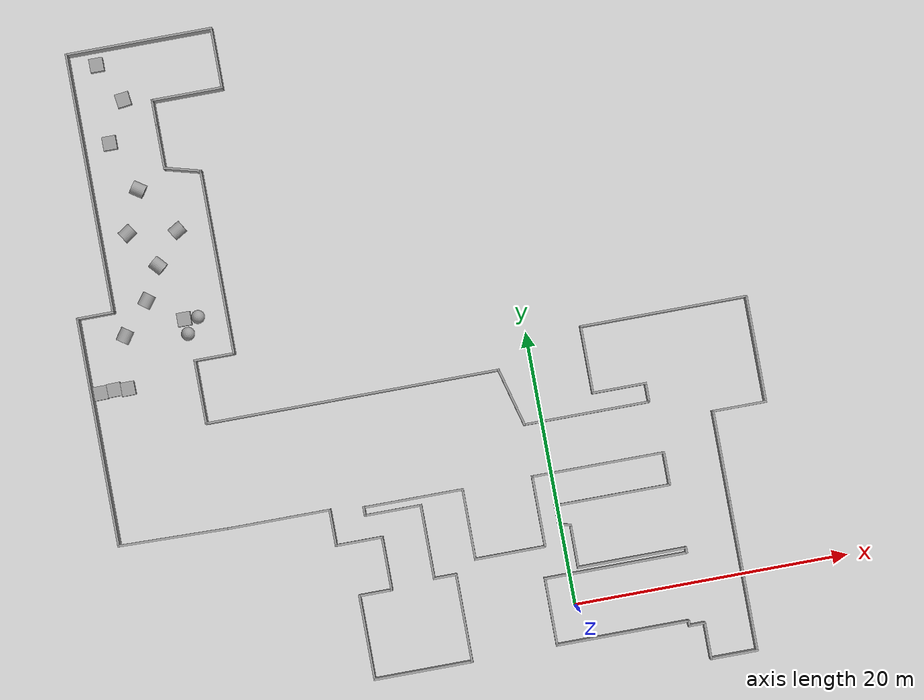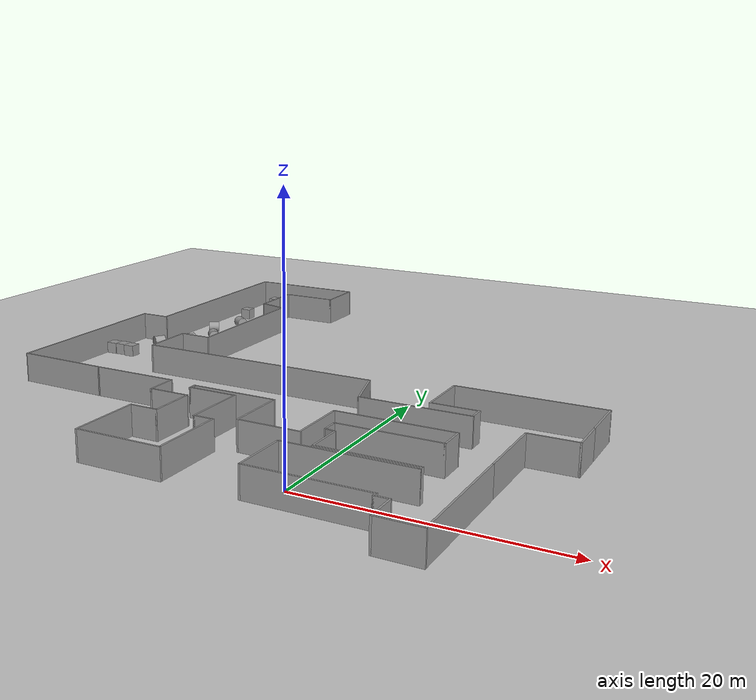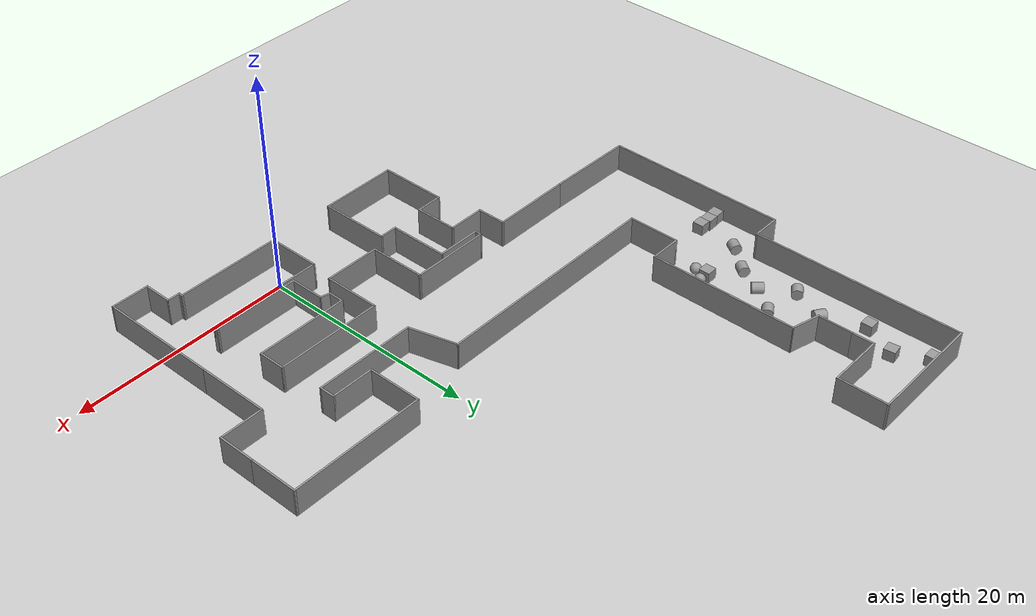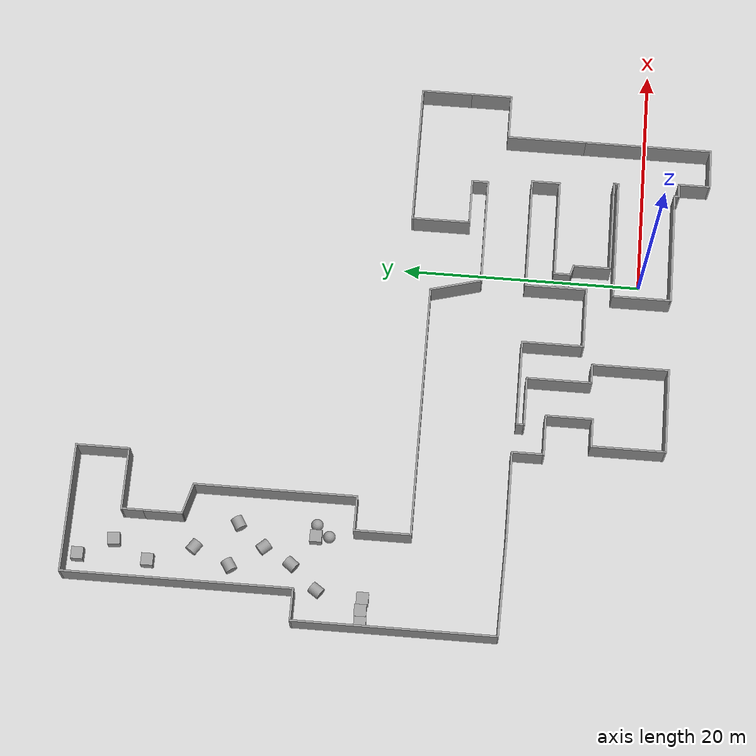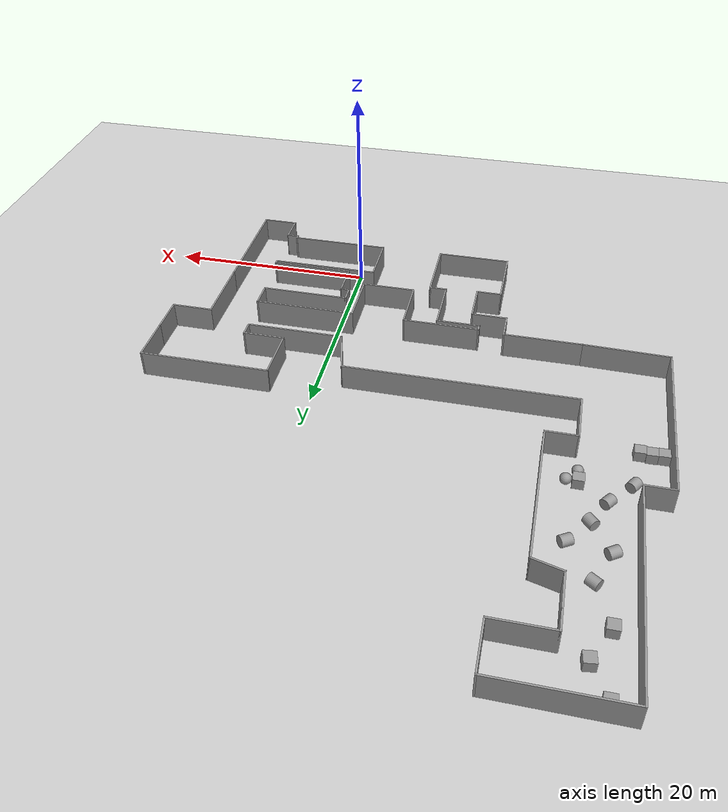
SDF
<sdf version="1.7">
 <world name="default">
  <model name="ground_plane">
   <static>1</static>
   <link name="link">
    <collision name="collision">
     <geometry><plane><normal>0 0 1</normal><size>100 100</size></plane></geometry>
     <surface><friction><ode><mu>100</mu><mu2>50</mu2></ode></friction></surface>
    </collision>
    <visual name="visual">
     <cast_shadows>0</cast_shadows>
     <geometry><plane><normal>0 0 1</normal><size>100 100</size></plane></geometry>
     <material>
      <script><uri>file://media/materials/scripts/gazebo.material</uri><name>Gazebo/Grey</name></script>
     </material>
    </visual>
   </link>
  </model>
  <model name="complex_env3">
   <pose>-7.7367 20.0281 0 0 -0 0</pose>
   <link name="Wall_1">
    <collision name="Wall_1_Collision">
     <geometry><box><size>11 0.15 2.5</size></box></geometry>
     <pose>0 0 1.25 0 -0 0</pose>
    </collision>
    <visual name="Wall_1_Visual">
     <pose>0 0 1.25 0 -0 0</pose>
     <geometry><box><size>11 0.15 2.5</size></box></geometry>
     <material>
      <script><uri>file://media/materials/scripts/gazebo.material</uri><name>Gazebo/Grey</name></script>
      <ambient>1 1 1 1</ambient>
     </material>
     <meta><layer>0</layer></meta>
    </visual>
    <pose>19.9445 -20.1124 0 0 -0 -1.5708</pose>
   </link>
   <link name="Wall_10">
    <collision name="Wall_10_Collision">
     <geometry><box><size>8 0.15 2.5</size></box></geometry>
     <pose>0 0 1.25 0 -0 0</pose>
    </collision>
    <visual name="Wall_10_Visual">
     <pose>0 0 1.25 0 -0 0</pose>
     <geometry><box><size>8 0.15 2.5</size></box></geometry>
     <material>
      <script><uri>file://media/materials/scripts/gazebo.material</uri><name>Gazebo/Grey</name></script>
      <ambient>1 1 1 1</ambient>
     </material>
     <meta><layer>0</layer></meta>
    </visual>
    <pose>12.3195 -17.3874 0 0 -0 3.14159</pose>
   </link>
   <link name="Wall_11">
    <collision name="Wall_11_Collision">
     <geometry><box><size>3.25 0.15 2.5</size></box></geometry>
     <pose>0 0 1.25 0 -0 0</pose>
    </collision>
    <visual name="Wall_11_Visual">
     <pose>0 0 1.25 0 -0 0</pose>
     <geometry><box><size>3.25 0.15 2.5</size></box></geometry>
     <material>
      <script><uri>file://media/materials/scripts/gazebo.material</uri><name>Gazebo/Grey</name></script>
      <ambient>1 1 1 1</ambient>
     </material>
     <meta><layer>0</layer></meta>
    </visual>
    <pose>8.39449 -15.8374 0 0 -0 1.5708</pose>
   </link>
   <link name="Wall_12">
    <collision name="Wall_12_Collision">
     <geometry><box><size>1 0.15 2.5</size></box></geometry>
     <pose>0 0 1.25 0 -0 0</pose>
    </collision>
    <visual name="Wall_12_Visual">
     <pose>0 0 1.25 0 -0 0</pose>
     <geometry><box><size>1 0.15 2.5</size></box></geometry>
     <material>
      <script><uri>file://media/materials/scripts/gazebo.material</uri><name>Gazebo/Grey</name></script>
      <ambient>1 1 1 1</ambient>
     </material>
     <meta><layer>0</layer></meta>
    </visual>
    <pose>7.98397 -14.1774 0 0 -0 2.87979</pose>
   </link>
   <link name="Wall_13">
    <collision name="Wall_13_Collision">
     <geometry><box><size>1.5 0.15 2.5</size></box></geometry>
     <pose>0 0 1.25 0 -0 0</pose>
    </collision>
    <visual name="Wall_13_Visual">
     <pose>0 0 1.25 0 -0 0</pose>
     <geometry><box><size>1.5 0.15 2.5</size></box></geometry>
     <material>
      <script><uri>file://media/materials/scripts/gazebo.material</uri><name>Gazebo/Grey</name></script>
      <ambient>1 1 1 1</ambient>
     </material>
     <meta><layer>0</layer></meta>
    </visual>
    <pose>7.57345 -13.3924 0 0 -0 1.5708</pose>
   </link>
   <link name="Wall_14">
    <collision name="Wall_14_Collision">
     <geometry><box><size>8.5 0.15 2.5</size></box></geometry>
     <pose>0 0 1.25 0 -0 0</pose>
    </collision>
    <visual name="Wall_14_Visual">
     <pose>0 0 1.25 0 -0 0</pose>
     <geometry><box><size>8.5 0.15 2.5</size></box></geometry>
     <material>
      <script><uri>file://media/materials/scripts/gazebo.material</uri><name>Gazebo/Grey</name></script>
      <ambient>1 1 1 1</ambient>
     </material>
     <meta><layer>0</layer></meta>
    </visual>
    <pose>11.7485 -12.7174 0 0 -0 0</pose>
   </link>
   <link name="Wall_15">
    <collision name="Wall_15_Collision">
     <geometry><box><size>2.5 0.15 2.5</size></box></geometry>
     <pose>0 0 1.25 0 -0 0</pose>
    </collision>
    <visual name="Wall_15_Visual">
     <pose>0 0 1.25 0 -0 0</pose>
     <geometry><box><size>2.5 0.15 2.5</size></box></geometry>
     <material>
      <script><uri>file://media/materials/scripts/gazebo.material</uri><name>Gazebo/Grey</name></script>
      <ambient>1 1 1 1</ambient>
     </material>
     <meta><layer>0</layer></meta>
    </visual>
    <pose>15.9235 -11.5424 0 0 -0 1.5708</pose>
   </link>
   <link name="Wall_16">
    <collision name="Wall_16_Collision">
     <geometry><box><size>9.75 0.15 2.5</size></box></geometry>
     <pose>0 0 1.25 0 -0 0</pose>
    </collision>
    <visual name="Wall_16_Visual">
     <pose>0 0 1.25 0 -0 0</pose>
     <geometry><box><size>9.75 0.15 2.5</size></box></geometry>
     <material>
      <script><uri>file://media/materials/scripts/gazebo.material</uri><name>Gazebo/Grey</name></script>
      <ambient>1 1 1 1</ambient>
     </material>
     <meta><layer>0</layer></meta>
    </visual>
    <pose>11.1235 -10.3674 0 0 -0 3.14159</pose>
   </link>
   <link name="Wall_17">
    <collision name="Wall_17_Collision">
     <geometry><box><size>5.25 0.15 2.5</size></box></geometry>
     <pose>0 0 1.25 0 -0 0</pose>
    </collision>
    <visual name="Wall_17_Visual">
     <pose>0 0 1.25 0 -0 0</pose>
     <geometry><box><size>5.25 0.15 2.5</size></box></geometry>
     <material>
      <script><uri>file://media/materials/scripts/gazebo.material</uri><name>Gazebo/Grey</name></script>
      <ambient>1 1 1 1</ambient>
     </material>
     <meta><layer>0</layer></meta>
    </visual>
    <pose>6.32345 -12.9174 0 0 -0 -1.5708</pose>
   </link>
   <link name="Wall_18">
    <collision name="Wall_18_Collision">
     <geometry><box><size>5.25 0.15 2.5</size></box></geometry>
     <pose>0 0 1.25 0 -0 0</pose>
    </collision>
    <visual name="Wall_18_Visual">
     <pose>0 0 1.25 0 -0 0</pose>
     <geometry><box><size>5.25 0.15 2.5</size></box></geometry>
     <material>
      <script><uri>file://media/materials/scripts/gazebo.material</uri><name>Gazebo/Grey</name></script>
      <ambient>1 1 1 1</ambient>
     </material>
     <meta><layer>0</layer></meta>
    </visual>
    <pose>3.77345 -15.4674 0 0 -0 3.14159</pose>
   </link>
   <link name="Wall_19">
    <collision name="Wall_19_Collision">
     <geometry><box><size>5.25 0.15 2.5</size></box></geometry>
     <pose>0 0 1.25 0 -0 0</pose>
    </collision>
    <visual name="Wall_19_Visual">
     <pose>0 0 1.25 0 -0 0</pose>
     <geometry><box><size>5.25 0.15 2.5</size></box></geometry>
     <material>
      <script><uri>file://media/materials/scripts/gazebo.material</uri><name>Gazebo/Grey</name></script>
      <ambient>1 1 1 1</ambient>
     </material>
     <meta><layer>0</layer></meta>
    </visual>
    <pose>1.22345 -12.9174 0 0 -0 1.5708</pose>
   </link>
   <link name="Wall_2">
    <collision name="Wall_2_Collision">
     <geometry><box><size>3.5 0.15 2.5</size></box></geometry>
     <pose>0 0 1.25 0 -0 0</pose>
    </collision>
    <visual name="Wall_2_Visual">
     <pose>0 0 1.25 0 -0 0</pose>
     <geometry><box><size>3.5 0.15 2.5</size></box></geometry>
     <material>
      <script><uri>file://media/materials/scripts/gazebo.material</uri><name>Gazebo/Grey</name></script>
      <ambient>1 1 1 1</ambient>
     </material>
     <meta><layer>0</layer></meta>
    </visual>
    <pose>18.2695 -25.5374 0 0 -0 3.14159</pose>
   </link>
   <link name="Wall_20">
    <collision name="Wall_20_Collision">
     <geometry><box><size>7.25 0.15 2.5</size></box></geometry>
     <pose>0 0 1.25 0 -0 0</pose>
    </collision>
    <visual name="Wall_20_Visual">
     <pose>0 0 1.25 0 -0 0</pose>
     <geometry><box><size>7.25 0.15 2.5</size></box></geometry>
     <material>
      <script><uri>file://media/materials/scripts/gazebo.material</uri><name>Gazebo/Grey</name></script>
      <ambient>1 1 1 1</ambient>
     </material>
     <meta><layer>0</layer></meta>
    </visual>
    <pose>-2.32655 -10.3674 0 0 -0 3.14159</pose>
   </link>
   <link name="Wall_22">
    <collision name="Wall_22_Collision">
     <geometry><box><size>4.21482 0.15 2.5</size></box></geometry>
     <pose>0 0 1.25 0 -0 0</pose>
    </collision>
    <visual name="Wall_22_Visual">
     <pose>0 0 1.25 0 -0 0</pose>
     <geometry><box><size>4.21482 0.15 2.5</size></box></geometry>
     <material>
      <script><uri>file://media/materials/scripts/gazebo.material</uri><name>Gazebo/Grey</name></script>
      <ambient>1 1 1 1</ambient>
     </material>
     <meta><layer>0</layer></meta>
    </visual>
    <pose>-3.96425 -10.9469 0 0 -0 0</pose>
   </link>
   <link name="Wall_23">
    <collision name="Wall_23_Collision">
     <geometry><box><size>5.5 0.15 2.5</size></box></geometry>
     <pose>0 0 1.25 0 -0 0</pose>
    </collision>
    <visual name="Wall_23_Visual">
     <pose>0 0 1.25 0 -0 0</pose>
     <geometry><box><size>5.5 0.15 2.5</size></box></geometry>
     <material>
      <script><uri>file://media/materials/scripts/gazebo.material</uri><name>Gazebo/Grey</name></script>
      <ambient>1 1 1 1</ambient>
     </material>
     <meta><layer>0</layer></meta>
    </visual>
    <pose>-1.93184 -13.6219 0 0 -0 -1.5708</pose>
   </link>
   <link name="Wall_24">
    <collision name="Wall_24_Collision">
     <geometry><box><size>1.75 0.15 2.5</size></box></geometry>
     <pose>0 0 1.25 0 -0 0</pose>
    </collision>
    <visual name="Wall_24_Visual">
     <pose>0 0 1.25 0 -0 0</pose>
     <geometry><box><size>1.75 0.15 2.5</size></box></geometry>
     <material>
      <script><uri>file://media/materials/scripts/gazebo.material</uri><name>Gazebo/Grey</name></script>
      <ambient>1 1 1 1</ambient>
     </material>
     <meta><layer>0</layer></meta>
    </visual>
    <pose>-1.13184 -16.2969 0 0 -0 0</pose>
   </link>
   <link name="Wall_25">
    <collision name="Wall_25_Collision">
     <geometry><box><size>6.5 0.15 2.5</size></box></geometry>
     <pose>0 0 1.25 0 -0 0</pose>
    </collision>
    <visual name="Wall_25_Visual">
     <pose>0 0 1.25 0 -0 0</pose>
     <geometry><box><size>6.5 0.15 2.5</size></box></geometry>
     <material>
      <script><uri>file://media/materials/scripts/gazebo.material</uri><name>Gazebo/Grey</name></script>
      <ambient>1 1 1 1</ambient>
     </material>
     <meta><layer>0</layer></meta>
    </visual>
    <pose>-0.331841 -19.4719 0 0 -0 -1.5708</pose>
   </link>
   <link name="Wall_26">
    <collision name="Wall_26_Collision">
     <geometry><box><size>7.25 0.15 2.5</size></box></geometry>
     <pose>0 0 1.25 0 -0 0</pose>
    </collision>
    <visual name="Wall_26_Visual">
     <pose>0 0 1.25 0 -0 0</pose>
     <geometry><box><size>7.25 0.15 2.5</size></box></geometry>
     <material>
      <script><uri>file://media/materials/scripts/gazebo.material</uri><name>Gazebo/Grey</name></script>
      <ambient>1 1 1 1</ambient>
     </material>
     <meta><layer>0</layer></meta>
    </visual>
    <pose>-3.88184 -22.6469 0 0 -0 3.14159</pose>
   </link>
   <link name="Wall_27">
    <collision name="Wall_27_Collision">
     <geometry><box><size>6.25 0.15 2.5</size></box></geometry>
     <pose>0 0 1.25 0 -0 0</pose>
    </collision>
    <visual name="Wall_27_Visual">
     <pose>0 0 1.25 0 -0 0</pose>
     <geometry><box><size>6.25 0.15 2.5</size></box></geometry>
     <material>
      <script><uri>file://media/materials/scripts/gazebo.material</uri><name>Gazebo/Grey</name></script>
      <ambient>1 1 1 1</ambient>
     </material>
     <meta><layer>0</layer></meta>
    </visual>
    <pose>-7.43184 -19.5969 0 0 -0 1.5708</pose>
   </link>
   <link name="Wall_28">
    <collision name="Wall_28_Collision">
     <geometry><box><size>2.5 0.15 2.5</size></box></geometry>
     <pose>0 0 1.25 0 -0 0</pose>
    </collision>
    <visual name="Wall_28_Visual">
     <pose>0 0 1.25 0 -0 0</pose>
     <geometry><box><size>2.5 0.15 2.5</size></box></geometry>
     <material>
      <script><uri>file://media/materials/scripts/gazebo.material</uri><name>Gazebo/Grey</name></script>
      <ambient>1 1 1 1</ambient>
     </material>
     <meta><layer>0</layer></meta>
    </visual>
    <pose>-6.25684 -16.5469 0 0 -0 0</pose>
   </link>
   <link name="Wall_29">
    <collision name="Wall_29_Collision">
     <geometry><box><size>4 0.15 2.5</size></box></geometry>
     <pose>0 0 1.25 0 -0 0</pose>
    </collision>
    <visual name="Wall_29_Visual">
     <pose>0 0 1.25 0 -0 0</pose>
     <geometry><box><size>4 0.15 2.5</size></box></geometry>
     <material>
      <script><uri>file://media/materials/scripts/gazebo.material</uri><name>Gazebo/Grey</name></script>
      <ambient>1 1 1 1</ambient>
     </material>
     <meta><layer>0</layer></meta>
    </visual>
    <pose>-5.08184 -14.6219 0 0 -0 1.5708</pose>
   </link>
   <link name="Wall_3">
    <collision name="Wall_3_Collision">
     <geometry><box><size>2.75 0.15 2.5</size></box></geometry>
     <pose>0 0 1.25 0 -0 0</pose>
    </collision>
    <visual name="Wall_3_Visual">
     <pose>0 0 1.25 0 -0 0</pose>
     <geometry><box><size>2.75 0.15 2.5</size></box></geometry>
     <material>
      <script><uri>file://media/materials/scripts/gazebo.material</uri><name>Gazebo/Grey</name></script>
      <ambient>1 1 1 1</ambient>
     </material>
     <meta><layer>0</layer></meta>
    </visual>
    <pose>16.5945 -24.2374 0 0 -0 1.5708</pose>
   </link>
   <link name="Wall_30">
    <collision name="Wall_30_Collision">
     <geometry><box><size>3.5 0.15 2.5</size></box></geometry>
     <pose>0 0 1.25 0 -0 0</pose>
    </collision>
    <visual name="Wall_30_Visual">
     <pose>0 0 1.25 0 -0 0</pose>
     <geometry><box><size>3.5 0.15 2.5</size></box></geometry>
     <material>
      <script><uri>file://media/materials/scripts/gazebo.material</uri><name>Gazebo/Grey</name></script>
      <ambient>1 1 1 1</ambient>
     </material>
     <meta><layer>0</layer></meta>
    </visual>
    <pose>-6.75684 -12.6969 0 0 -0 3.14159</pose>
   </link>
   <link name="Wall_31">
    <collision name="Wall_31_Collision">
     <geometry><box><size>2.75 0.15 2.5</size></box></geometry>
     <pose>0 0 1.25 0 -0 0</pose>
    </collision>
    <visual name="Wall_31_Visual">
     <pose>0 0 1.25 0 -0 0</pose>
     <geometry><box><size>2.75 0.15 2.5</size></box></geometry>
     <material>
      <script><uri>file://media/materials/scripts/gazebo.material</uri><name>Gazebo/Grey</name></script>
      <ambient>1 1 1 1</ambient>
     </material>
     <meta><layer>0</layer></meta>
    </visual>
    <pose>-8.43184 -11.3969 0 0 -0 1.5708</pose>
   </link>
   <link name="Wall_32">
    <collision name="Wall_32_Collision">
     <geometry><box><size>7.5 0.15 2.5</size></box></geometry>
     <pose>0 0 1.25 0 -0 0</pose>
    </collision>
    <visual name="Wall_32_Visual">
     <pose>0 0 1.25 0 -0 0</pose>
     <geometry><box><size>7.5 0.15 2.5</size></box></geometry>
     <material>
      <script><uri>file://media/materials/scripts/gazebo.material</uri><name>Gazebo/Grey</name></script>
      <ambient>1 1 1 1</ambient>
     </material>
     <meta><layer>0</layer></meta>
    </visual>
    <pose>-12.1068 -10.0969 0 0 -0 3.14159</pose>
   </link>
   <link name="Wall_4">
    <collision name="Wall_4_Collision">
     <geometry><box><size>1.25 0.15 2.5</size></box></geometry>
     <pose>0 0 1.25 0 -0 0</pose>
    </collision>
    <visual name="Wall_4_Visual">
     <pose>0 0 1.25 0 -0 0</pose>
     <geometry><box><size>1.25 0.15 2.5</size></box></geometry>
     <material>
      <script><uri>file://media/materials/scripts/gazebo.material</uri><name>Gazebo/Grey</name></script>
      <ambient>1 1 1 1</ambient>
     </material>
     <meta><layer>0</layer></meta>
    </visual>
    <pose>16.0445 -22.9374 0 0 -0 3.14159</pose>
   </link>
   <link name="Wall_41">
    <collision name="Wall_41_Collision">
     <geometry><box><size>0.75 0.15 2.5</size></box></geometry>
     <pose>0 0 1.25 0 -0 0</pose>
    </collision>
    <visual name="Wall_41_Visual">
     <pose>0 0 1.25 0 -0 0</pose>
     <geometry><box><size>0.75 0.15 2.5</size></box></geometry>
     <material>
      <script><uri>file://media/materials/scripts/gazebo.material</uri><name>Gazebo/Grey</name></script>
      <ambient>1 1 1 1</ambient>
     </material>
     <meta><layer>0</layer></meta>
    </visual>
    <pose>-5.99666 -10.6469 0 0 -0 1.5708</pose>
   </link>
   <link name="Wall_43">
    <collision name="Wall_43_Collision">
     <geometry><box><size>6.75 0.15 2.5</size></box></geometry>
     <pose>0 0 1.25 0 -0 0</pose>
    </collision>
    <visual name="Wall_43_Visual">
     <pose>0 0 1.25 0 -0 0</pose>
     <geometry><box><size>6.75 0.15 2.5</size></box></geometry>
     <material>
      <script><uri>file://media/materials/scripts/gazebo.material</uri><name>Gazebo/Grey</name></script>
      <ambient>1 1 1 1</ambient>
     </material>
     <meta><layer>0</layer></meta>
    </visual>
    <pose>19.9445 -11.3874 0 0 -0 1.5708</pose>
   </link>
   <link name="Wall_44">
    <collision name="Wall_44_Collision">
     <geometry><box><size>4 0.15 2.5</size></box></geometry>
     <pose>0 0 1.25 0 -0 0</pose>
    </collision>
    <visual name="Wall_44_Visual">
     <pose>0 0 1.25 0 -0 0</pose>
     <geometry><box><size>4 0.15 2.5</size></box></geometry>
     <material>
      <script><uri>file://media/materials/scripts/gazebo.material</uri><name>Gazebo/Grey</name></script>
      <ambient>1 1 1 1</ambient>
     </material>
     <meta><layer>0</layer></meta>
    </visual>
    <pose>21.8695 -8.08735 0 0 -0 0</pose>
   </link>
   <link name="Wall_45">
    <collision name="Wall_45_Collision">
     <geometry><box><size>3.5 0.15 2.5</size></box></geometry>
     <pose>0 0 1.25 0 -0 0</pose>
    </collision>
    <visual name="Wall_45_Visual">
     <pose>0 0 1.25 0 -0 0</pose>
     <geometry><box><size>3.5 0.15 2.5</size></box></geometry>
     <material>
      <script><uri>file://media/materials/scripts/gazebo.material</uri><name>Gazebo/Grey</name></script>
      <ambient>1 1 1 1</ambient>
     </material>
     <meta><layer>0</layer></meta>
    </visual>
    <pose>23.7945 -6.41235 0 0 -0 1.5708</pose>
   </link>
   <link name="Wall_46">
    <collision name="Wall_46_Collision">
     <geometry><box><size>4.5 0.15 2.5</size></box></geometry>
     <pose>0 0 1.25 0 -0 0</pose>
    </collision>
    <visual name="Wall_46_Visual">
     <pose>0 0 1.25 0 -0 0</pose>
     <geometry><box><size>4.5 0.15 2.5</size></box></geometry>
     <material>
      <script><uri>file://media/materials/scripts/gazebo.material</uri><name>Gazebo/Grey</name></script>
      <ambient>1 1 1 1</ambient>
     </material>
     <meta><layer>0</layer></meta>
    </visual>
    <pose>23.7945 -2.56235 0 0 -0 1.5708</pose>
   </link>
   <link name="Wall_47">
    <collision name="Wall_47_Collision">
     <geometry><box><size>12.25 0.15 2.5</size></box></geometry>
     <pose>0 0 1.25 0 -0 0</pose>
    </collision>
    <visual name="Wall_47_Visual">
     <pose>0 0 1.25 0 -0 0</pose>
     <geometry><box><size>12.25 0.15 2.5</size></box></geometry>
     <material>
      <script><uri>file://media/materials/scripts/gazebo.material</uri><name>Gazebo/Grey</name></script>
      <ambient>1 1 1 1</ambient>
     </material>
     <meta><layer>0</layer></meta>
    </visual>
    <pose>17.7445 -0.387354 0 0 -0 3.14159</pose>
   </link>
   <link name="Wall_48">
    <collision name="Wall_48_Collision">
     <geometry><box><size>5 0.15 2.5</size></box></geometry>
     <pose>0 0 1.25 0 -0 0</pose>
    </collision>
    <visual name="Wall_48_Visual">
     <pose>0 0 1.25 0 -0 0</pose>
     <geometry><box><size>5 0.15 2.5</size></box></geometry>
     <material>
      <script><uri>file://media/materials/scripts/gazebo.material</uri><name>Gazebo/Grey</name></script>
      <ambient>1 1 1 1</ambient>
     </material>
     <meta><layer>0</layer></meta>
    </visual>
    <pose>11.6945 -2.81235 0 0 -0 -1.5708</pose>
   </link>
   <link name="Wall_49">
    <collision name="Wall_49_Collision">
     <geometry><box><size>4 0.15 2.5</size></box></geometry>
     <pose>0 0 1.25 0 -0 0</pose>
    </collision>
    <visual name="Wall_49_Visual">
     <pose>0 0 1.25 0 -0 0</pose>
     <geometry><box><size>4 0.15 2.5</size></box></geometry>
     <material>
      <script><uri>file://media/materials/scripts/gazebo.material</uri><name>Gazebo/Grey</name></script>
      <ambient>1 1 1 1</ambient>
     </material>
     <meta><layer>0</layer></meta>
    </visual>
    <pose>13.6195 -5.23735 0 0 -0 0</pose>
   </link>
   <link name="Wall_5">
    <collision name="Wall_5_Collision">
     <geometry><box><size>0.5 0.15 2.5</size></box></geometry>
     <pose>0 0 1.25 0 -0 0</pose>
    </collision>
    <visual name="Wall_5_Visual">
     <pose>0 0 1.25 0 -0 0</pose>
     <geometry><box><size>0.5 0.15 2.5</size></box></geometry>
     <material>
      <script><uri>file://media/materials/scripts/gazebo.material</uri><name>Gazebo/Grey</name></script>
      <ambient>1 1 1 1</ambient>
     </material>
     <meta><layer>0</layer></meta>
    </visual>
    <pose>15.4945 -22.7624 0 0 -0 1.5708</pose>
   </link>
   <link name="Wall_50">
    <collision name="Wall_50_Collision">
     <geometry><box><size>1.5 0.15 2.5</size></box></geometry>
     <pose>0 0 1.25 0 -0 0</pose>
    </collision>
    <visual name="Wall_50_Visual">
     <pose>0 0 1.25 0 -0 0</pose>
     <geometry><box><size>1.5 0.15 2.5</size></box></geometry>
     <material>
      <script><uri>file://media/materials/scripts/gazebo.material</uri><name>Gazebo/Grey</name></script>
      <ambient>1 1 1 1</ambient>
     </material>
     <meta><layer>0</layer></meta>
    </visual>
    <pose>15.5445 -5.91235 0 0 -0 -1.5708</pose>
   </link>
   <link name="Wall_51">
    <collision name="Wall_51_Collision">
     <geometry><box><size>9.25 0.15 2.5</size></box></geometry>
     <pose>0 0 1.25 0 -0 0</pose>
    </collision>
    <visual name="Wall_51_Visual">
     <pose>0 0 1.25 0 -0 0</pose>
     <geometry><box><size>9.25 0.15 2.5</size></box></geometry>
     <material>
      <script><uri>file://media/materials/scripts/gazebo.material</uri><name>Gazebo/Grey</name></script>
      <ambient>1 1 1 1</ambient>
     </material>
     <meta><layer>0</layer></meta>
    </visual>
    <pose>10.9945 -6.58735 0 0 -0 3.14159</pose>
   </link>
   <link name="Wall_52">
    <collision name="Wall_52_Collision">
     <geometry><box><size>4.5 0.15 2.5</size></box></geometry>
     <pose>0 0 1.25 0 -0 0</pose>
    </collision>
    <visual name="Wall_52_Visual">
     <pose>0 0 1.25 0 -0 0</pose>
     <geometry><box><size>4.5 0.15 2.5</size></box></geometry>
     <material>
      <script><uri>file://media/materials/scripts/gazebo.material</uri><name>Gazebo/Grey</name></script>
      <ambient>1 1 1 1</ambient>
     </material>
     <meta><layer>0</layer></meta>
    </visual>
    <pose>5.88156 -4.48646 0 0 -0 1.8326</pose>
   </link>
   <link name="Wall_53">
    <collision name="Wall_53_Collision">
     <geometry><box><size>21.5 0.15 2.5</size></box></geometry>
     <pose>0 0 1.25 0 -0 0</pose>
    </collision>
    <visual name="Wall_53_Visual">
     <pose>0 0 1.25 0 -0 0</pose>
     <geometry><box><size>21.5 0.15 2.5</size></box></geometry>
     <material>
      <script><uri>file://media/materials/scripts/gazebo.material</uri><name>Gazebo/Grey</name></script>
      <ambient>1 1 1 1</ambient>
     </material>
     <meta><layer>0</layer></meta>
    </visual>
    <pose>-5.35638 -2.38558 0 0 -0 3.14159</pose>
   </link>
   <link name="Wall_54">
    <collision name="Wall_54_Collision">
     <geometry><box><size>4.75 0.15 2.5</size></box></geometry>
     <pose>0 0 1.25 0 -0 0</pose>
    </collision>
    <visual name="Wall_54_Visual">
     <pose>0 0 1.25 0 -0 0</pose>
     <geometry><box><size>4.75 0.15 2.5</size></box></geometry>
     <material>
      <script><uri>file://media/materials/scripts/gazebo.material</uri><name>Gazebo/Grey</name></script>
      <ambient>1 1 1 1</ambient>
     </material>
     <meta><layer>0</layer></meta>
    </visual>
    <pose>-16.0314 -0.085575 0 0 -0 1.5708</pose>
   </link>
   <link name="Wall_55">
    <collision name="Wall_55_Collision">
     <geometry><box><size>3 0.15 2.5</size></box></geometry>
     <pose>0 0 1.25 0 -0 0</pose>
    </collision>
    <visual name="Wall_55_Visual">
     <pose>0 0 1.25 0 -0 0</pose>
     <geometry><box><size>3 0.15 2.5</size></box></geometry>
     <material>
      <script><uri>file://media/materials/scripts/gazebo.material</uri><name>Gazebo/Grey</name></script>
      <ambient>1 1 1 1</ambient>
     </material>
     <meta><layer>0</layer></meta>
    </visual>
    <pose>-14.6064 2.21442 0 0 -0 0</pose>
   </link>
   <link name="Wall_56">
    <collision name="Wall_56_Collision">
     <geometry><box><size>13.5 0.15 2.5</size></box></geometry>
     <pose>0 0 1.25 0 -0 0</pose>
    </collision>
    <visual name="Wall_56_Visual">
     <pose>0 0 1.25 0 -0 0</pose>
     <geometry><box><size>13.5 0.15 2.5</size></box></geometry>
     <material>
      <script><uri>file://media/materials/scripts/gazebo.material</uri><name>Gazebo/Grey</name></script>
      <ambient>1 1 1 1</ambient>
     </material>
     <meta><layer>0</layer></meta>
    </visual>
    <pose>-13.1814 8.88942 0 0 -0 1.5708</pose>
   </link>
   <link name="Wall_57">
    <collision name="Wall_57_Collision">
     <geometry><box><size>2.75 0.15 2.5</size></box></geometry>
     <pose>0 0 1.25 0 -0 0</pose>
    </collision>
    <visual name="Wall_57_Visual">
     <pose>0 0 1.25 0 -0 0</pose>
     <geometry><box><size>2.75 0.15 2.5</size></box></geometry>
     <material>
      <script><uri>file://media/materials/scripts/gazebo.material</uri><name>Gazebo/Grey</name></script>
      <ambient>1 1 1 1</ambient>
     </material>
     <meta><layer>0</layer></meta>
    </visual>
    <pose>-14.4371 15.9009 0 0 -0 2.87979</pose>
   </link>
   <link name="Wall_58">
    <collision name="Wall_58_Collision">
     <geometry><box><size>3.25 0.15 2.5</size></box></geometry>
     <pose>0 0 1.25 0 -0 0</pose>
    </collision>
    <visual name="Wall_58_Visual">
     <pose>0 0 1.25 0 -0 0</pose>
     <geometry><box><size>3.25 0.15 2.5</size></box></geometry>
     <material>
      <script><uri>file://media/materials/scripts/gazebo.material</uri><name>Gazebo/Grey</name></script>
      <ambient>1 1 1 1</ambient>
     </material>
     <meta><layer>0</layer></meta>
    </visual>
    <pose>-15.6928 17.7874 0 0 -0 1.5708</pose>
   </link>
   <link name="Wall_59">
    <collision name="Wall_59_Collision">
     <geometry><box><size>2 0.15 2.5</size></box></geometry>
     <pose>0 0 1.25 0 -0 0</pose>
    </collision>
    <visual name="Wall_59_Visual">
     <pose>0 0 1.25 0 -0 0</pose>
     <geometry><box><size>2 0.15 2.5</size></box></geometry>
     <material>
      <script><uri>file://media/materials/scripts/gazebo.material</uri><name>Gazebo/Grey</name></script>
      <ambient>1 1 1 1</ambient>
     </material>
     <meta><layer>0</layer></meta>
    </visual>
    <pose>-15.6928 20.2624 0 0 -0 1.5708</pose>
   </link>
   <link name="Wall_6">
    <collision name="Wall_6_Collision">
     <geometry><box><size>9.75 0.15 2.5</size></box></geometry>
     <pose>0 0 1.25 0 -0 0</pose>
    </collision>
    <visual name="Wall_6_Visual">
     <pose>0 0 1.25 0 -0 0</pose>
     <geometry><box><size>9.75 0.15 2.5</size></box></geometry>
     <material>
      <script><uri>file://media/materials/scripts/gazebo.material</uri><name>Gazebo/Grey</name></script>
      <ambient>1 1 1 1</ambient>
     </material>
     <meta><layer>0</layer></meta>
    </visual>
    <pose>10.6945 -22.5874 0 0 -0 3.14159</pose>
   </link>
   <link name="Wall_60">
    <collision name="Wall_60_Collision">
     <geometry><box><size>5.25 0.15 2.5</size></box></geometry>
     <pose>0 0 1.25 0 -0 0</pose>
    </collision>
    <visual name="Wall_60_Visual">
     <pose>0 0 1.25 0 -0 0</pose>
     <geometry><box><size>5.25 0.15 2.5</size></box></geometry>
     <material>
      <script><uri>file://media/materials/scripts/gazebo.material</uri><name>Gazebo/Grey</name></script>
      <ambient>1 1 1 1</ambient>
     </material>
     <meta><layer>0</layer></meta>
    </visual>
    <pose>-13.1428 21.1874 0 0 -0 0</pose>
   </link>
   <link name="Wall_61">
    <collision name="Wall_61_Collision">
     <geometry><box><size>4.5 0.15 2.5</size></box></geometry>
     <pose>0 0 1.25 0 -0 0</pose>
    </collision>
    <visual name="Wall_61_Visual">
     <pose>0 0 1.25 0 -0 0</pose>
     <geometry><box><size>4.5 0.15 2.5</size></box></geometry>
     <material>
      <script><uri>file://media/materials/scripts/gazebo.material</uri><name>Gazebo/Grey</name></script>
      <ambient>1 1 1 1</ambient>
     </material>
     <meta><layer>0</layer></meta>
    </visual>
    <pose>-10.5928 23.3624 0 0 -0 1.5708</pose>
   </link>
   <link name="Wall_62">
    <collision name="Wall_62_Collision">
     <geometry><box><size>10.75 0.15 2.5</size></box></geometry>
     <pose>0 0 1.25 0 -0 0</pose>
    </collision>
    <visual name="Wall_62_Visual">
     <pose>0 0 1.25 0 -0 0</pose>
     <geometry><box><size>10.75 0.15 2.5</size></box></geometry>
     <material>
      <script><uri>file://media/materials/scripts/gazebo.material</uri><name>Gazebo/Grey</name></script>
      <ambient>1 1 1 1</ambient>
     </material>
     <meta><layer>0</layer></meta>
    </visual>
    <pose>-15.8928 25.5374 0 0 -0 3.14159</pose>
   </link>
   <link name="Wall_63">
    <collision name="Wall_63_Collision">
     <geometry><box><size>19 0.15 2.5</size></box></geometry>
     <pose>0 0 1.25 0 -0 0</pose>
    </collision>
    <visual name="Wall_63_Visual">
     <pose>0 0 1.25 0 -0 0</pose>
     <geometry><box><size>19 0.15 2.5</size></box></geometry>
     <material>
      <script><uri>file://media/materials/scripts/gazebo.material</uri><name>Gazebo/Grey</name></script>
      <ambient>1 1 1 1</ambient>
     </material>
     <meta><layer>0</layer></meta>
    </visual>
    <pose>-21.1928 16.1124 0 0 -0 -1.5708</pose>
   </link>
   <link name="Wall_64">
    <collision name="Wall_64_Collision">
     <geometry><box><size>2.75 0.15 2.5</size></box></geometry>
     <pose>0 0 1.25 0 -0 0</pose>
    </collision>
    <visual name="Wall_64_Visual">
     <pose>0 0 1.25 0 -0 0</pose>
     <geometry><box><size>2.75 0.15 2.5</size></box></geometry>
     <material>
      <script><uri>file://media/materials/scripts/gazebo.material</uri><name>Gazebo/Grey</name></script>
      <ambient>1 1 1 1</ambient>
     </material>
     <meta><layer>0</layer></meta>
    </visual>
    <pose>-22.4928 6.68735 0 0 -0 3.14159</pose>
   </link>
   <link name="Wall_65">
    <collision name="Wall_65_Collision">
     <geometry><box><size>16.75 0.15 2.5</size></box></geometry>
     <pose>0 0 1.25 0 -0 0</pose>
    </collision>
    <visual name="Wall_65_Visual">
     <pose>0 0 1.25 0 -0 0</pose>
     <geometry><box><size>16.75 0.15 2.5</size></box></geometry>
     <material>
      <script><uri>file://media/materials/scripts/gazebo.material</uri><name>Gazebo/Grey</name></script>
      <ambient>1 1 1 1</ambient>
     </material>
     <meta><layer>0</layer></meta>
    </visual>
    <pose>-23.7928 -1.61265 0 0 -0 -1.5708</pose>
   </link>
   <link name="Wall_66">
    <collision name="Wall_66_Collision">
     <geometry><box><size>8.16306 0.15 2.5</size></box></geometry>
     <pose>0 0 1.25 0 -0 0</pose>
    </collision>
    <visual name="Wall_66_Visual">
     <pose>0 0 1.25 0 -0 0</pose>
     <geometry><box><size>8.16306 0.15 2.5</size></box></geometry>
     <material>
      <script><uri>file://media/materials/scripts/gazebo.material</uri><name>Gazebo/Grey</name></script>
      <ambient>1 1 1 1</ambient>
     </material>
     <meta><layer>0</layer></meta>
    </visual>
    <pose>-19.7873 -10.0048 0 0 -0 -0.022998</pose>
   </link>
   <link name="Wall_7">
    <collision name="Wall_7_Collision">
     <geometry><box><size>5 0.15 2.5</size></box></geometry>
     <pose>0 0 1.25 0 -0 0</pose>
    </collision>
    <visual name="Wall_7_Visual">
     <pose>0 0 1.25 0 -0 0</pose>
     <geometry><box><size>5 0.15 2.5</size></box></geometry>
     <material>
      <script><uri>file://media/materials/scripts/gazebo.material</uri><name>Gazebo/Grey</name></script>
      <ambient>1 1 1 1</ambient>
     </material>
     <meta><layer>0</layer></meta>
    </visual>
    <pose>5.89449 -20.1624 0 0 -0 1.5708</pose>
   </link>
   <link name="Wall_8">
    <collision name="Wall_8_Collision">
     <geometry><box><size>10.5 0.15 2.5</size></box></geometry>
     <pose>0 0 1.25 0 -0 0</pose>
    </collision>
    <visual name="Wall_8_Visual">
     <pose>0 0 1.25 0 -0 0</pose>
     <geometry><box><size>10.5 0.15 2.5</size></box></geometry>
     <material>
      <script><uri>file://media/materials/scripts/gazebo.material</uri><name>Gazebo/Grey</name></script>
      <ambient>1 1 1 1</ambient>
     </material>
     <meta><layer>0</layer></meta>
    </visual>
    <pose>11.0695 -17.7374 0 0 -0 0</pose>
   </link>
   <link name="Wall_9">
    <collision name="Wall_9_Collision">
     <geometry><box><size>0.5 0.15 2.5</size></box></geometry>
     <pose>0 0 1.25 0 -0 0</pose>
    </collision>
    <visual name="Wall_9_Visual">
     <pose>0 0 1.25 0 -0 0</pose>
     <geometry><box><size>0.5 0.15 2.5</size></box></geometry>
     <material>
      <script><uri>file://media/materials/scripts/gazebo.material</uri><name>Gazebo/Grey</name></script>
      <ambient>1 1 1 1</ambient>
     </material>
     <meta><layer>0</layer></meta>
    </visual>
    <pose>16.2445 -17.5624 0 0 -0 1.5708</pose>
   </link>
   <static>1</static>
  </model>
  <model name="unit_box_10">
   <pose>-30.9397 21.2031 0.5 0 -0 0.009314</pose>
   <link name="link">
    <inertial>
     <mass>1</mass>
     <inertia>
      <ixx>0.166667</ixx>
      <ixy>0</ixy>
      <ixz>0</ixz>
      <iyy>0.166667</iyy>
      <iyz>0</iyz>
      <izz>0.166667</izz>
     </inertia>
    </inertial>
    <collision name="collision"><geometry><box><size>1 1 1</size></box></geometry></collision>
    <visual name="visual">
     <geometry><box><size>1 1 1</size></box></geometry>
     <material>
      <script><name>Gazebo/Grey</name><uri>file://media/materials/scripts/gazebo.material</uri></script>
     </material>
    </visual>
   </link>
  </model>
  <model name="unit_box_11">
   <pose>-29.9394 21.2525 0.5 0 -0 0.009495</pose>
   <link name="link">
    <inertial>
     <mass>1</mass>
     <inertia>
      <ixx>0.166667</ixx>
      <ixy>0</ixy>
      <ixz>0</ixz>
      <iyy>0.166667</iyy>
      <iyz>0</iyz>
      <izz>0.166667</izz>
     </inertia>
    </inertial>
    <collision name="collision"><geometry><box><size>1 1 1</size></box></geometry></collision>
    <visual name="visual">
     <geometry><box><size>1 1 1</size></box></geometry>
     <material>
      <script><name>Gazebo/Grey</name><uri>file://media/materials/scripts/gazebo.material</uri></script>
     </material>
    </visual>
   </link>
  </model>
  <model name="unit_box_12">
   <pose>-28.9381 21.1597 0.5 0 -0 0.009902</pose>
   <link name="link">
    <inertial>
     <mass>1</mass>
     <inertia>
      <ixx>0.166667</ixx>
      <ixy>0</ixy>
      <ixz>0</ixz>
      <iyy>0.166667</iyy>
      <iyz>0</iyz>
      <izz>0.166667</izz>
     </inertia>
    </inertial>
    <collision name="collision"><geometry><box><size>1 1 1</size></box></geometry></collision>
    <visual name="visual">
     <geometry><box><size>1 1 1</size></box></geometry>
     <material>
      <script><name>Gazebo/Grey</name><uri>file://media/materials/scripts/gazebo.material</uri></script>
     </material>
    </visual>
   </link>
  </model>
  <model name="unit_box_17">
   <pose>-27.0016 44.5815 0.5 -0 -0 -5e-06</pose>
   <link name="link">
    <inertial>
     <mass>1</mass>
     <inertia>
      <ixx>0.166667</ixx>
      <ixy>0</ixy>
      <ixz>0</ixz>
      <iyy>0.166667</iyy>
      <iyz>0</iyz>
      <izz>0.166667</izz>
     </inertia>
    </inertial>
    <collision name="collision"><geometry><box><size>1 1 1</size></box></geometry></collision>
    <visual name="visual">
     <geometry><box><size>1 1 1</size></box></geometry>
     <material>
      <script><name>Gazebo/Grey</name><uri>file://media/materials/scripts/gazebo.material</uri></script>
     </material>
    </visual>
   </link>
  </model>
  <model name="unit_box_18">
   <pose>-25.5631 41.7649 0.499997 0 5e-06 0.12837</pose>
   <link name="link">
    <inertial>
     <mass>1</mass>
     <inertia>
      <ixx>0.166667</ixx>
      <ixy>0</ixy>
      <ixz>0</ixz>
      <iyy>0.166667</iyy>
      <iyz>0</iyz>
      <izz>0.166667</izz>
     </inertia>
    </inertial>
    <collision name="collision"><geometry><box><size>1 1 1</size></box></geometry></collision>
    <visual name="visual">
     <geometry><box><size>1 1 1</size></box></geometry>
     <material>
      <script><name>Gazebo/Grey</name><uri>file://media/materials/scripts/gazebo.material</uri></script>
     </material>
    </visual>
   </link>
  </model>
  <model name="unit_box_19">
   <pose>-27.0831 38.8535 0.5 -0 -0 -5e-06</pose>
   <link name="link">
    <inertial>
     <mass>1</mass>
     <inertia>
      <ixx>0.166667</ixx>
      <ixy>0</ixy>
      <ixz>0</ixz>
      <iyy>0.166667</iyy>
      <iyz>0</iyz>
      <izz>0.166667</izz>
     </inertia>
    </inertial>
    <collision name="collision"><geometry><box><size>1 1 1</size></box></geometry></collision>
    <visual name="visual">
     <geometry><box><size>1 1 1</size></box></geometry>
     <material>
      <script><name>Gazebo/Grey</name><uri>file://media/materials/scripts/gazebo.material</uri></script>
     </material>
    </visual>
   </link>
  </model>
  <model name="unit_cylinder_0">
   <pose>-25.6566 35.1955 0.5 1.57029 -1.57045 -2.16863</pose>
   <link name="link">
    <inertial>
     <mass>1</mass>
     <inertia><ixx>0.145833</ixx><ixy>0</ixy><ixz>0</ixz><iyy>0.145833</iyy><iyz>0</iyz><izz>0.125</izz></inertia>
    </inertial>
    <collision name="collision">
     <geometry><cylinder><radius>0.5</radius><length>1</length></cylinder></geometry>
    </collision>
    <visual name="visual">
     <geometry><cylinder><radius>0.5</radius><length>1</length></cylinder></geometry>
     <material>
      <script><name>Gazebo/Grey</name><uri>file://media/materials/scripts/gazebo.material</uri></script>
     </material>
    </visual>
   </link>
  </model>
  <model name="unit_cylinder_1">
   <pose>-26.9878 32.212 0.5 -1.57072 1.5687 -0.99423</pose>
   <link name="link">
    <inertial>
     <mass>1</mass>
     <inertia><ixx>0.145833</ixx><ixy>0</ixy><ixz>0</ixz><iyy>0.145833</iyy><iyz>0</iyz><izz>0.125</izz></inertia>
    </inertial>
    <collision name="collision">
     <geometry><cylinder><radius>0.5</radius><length>1</length></cylinder></geometry>
    </collision>
    <visual name="visual">
     <geometry><cylinder><radius>0.5</radius><length>1</length></cylinder></geometry>
     <material>
      <script><name>Gazebo/Grey</name><uri>file://media/materials/scripts/gazebo.material</uri></script>
     </material>
    </visual>
   </link>
  </model>
  <model name="unit_cylinder_2">
   <pose>-25.2311 29.5284 0.499995 -1.57704 -1.56928 0.731236</pose>
   <link name="link">
    <inertial>
     <mass>1</mass>
     <inertia><ixx>0.145833</ixx><ixy>0</ixy><ixz>0</ixz><iyy>0.145833</iyy><iyz>0</iyz><izz>0.125</izz></inertia>
    </inertial>
    <collision name="collision">
     <geometry><cylinder><radius>0.5</radius><length>1</length></cylinder></geometry>
    </collision>
    <visual name="visual">
     <geometry><cylinder><radius>0.5</radius><length>1</length></cylinder></geometry>
     <material>
      <script><name>Gazebo/Grey</name><uri>file://media/materials/scripts/gazebo.material</uri></script>
     </material>
    </visual>
   </link>
  </model>
  <model name="unit_cylinder_3">
   <pose>-26.5012 27.1904 0.5 -1.57039 1.57034 -0.648526</pose>
   <link name="link">
    <inertial>
     <mass>1</mass>
     <inertia><ixx>0.145833</ixx><ixy>0</ixy><ixz>0</ixz><iyy>0.145833</iyy><iyz>0</iyz><izz>0.125</izz></inertia>
    </inertial>
    <collision name="collision">
     <geometry><cylinder><radius>0.5</radius><length>1</length></cylinder></geometry>
    </collision>
    <visual name="visual">
     <geometry><cylinder><radius>0.5</radius><length>1</length></cylinder></geometry>
     <material>
      <script><name>Gazebo/Grey</name><uri>file://media/materials/scripts/gazebo.material</uri></script>
     </material>
    </visual>
   </link>
  </model>
  <model name="unit_cylinder_4">
   <pose>-23.4079 31.767 0.5 -1.57052 -1.57021 2.10634</pose>
   <link name="link">
    <inertial>
     <mass>1</mass>
     <inertia><ixx>0.145833</ixx><ixy>0</ixy><ixz>0</ixz><iyy>0.145833</iyy><iyz>0</iyz><izz>0.125</izz></inertia>
    </inertial>
    <collision name="collision">
     <geometry><cylinder><radius>0.5</radius><length>1</length></cylinder></geometry>
    </collision>
    <visual name="visual">
     <geometry><cylinder><radius>0.5</radius><length>1</length></cylinder></geometry>
     <material>
      <script><name>Gazebo/Grey</name><uri>file://media/materials/scripts/gazebo.material</uri></script>
     </material>
    </visual>
   </link>
  </model>
  <model name="unit_cylinder_5">
   <pose>-28.4927 24.9556 0.5 -1.5702 1.5705 -0.599325</pose>
   <link name="link">
    <inertial>
     <mass>1</mass>
     <inertia><ixx>0.145833</ixx><ixy>0</ixy><ixz>0</ixz><iyy>0.145833</iyy><iyz>0</iyz><izz>0.125</izz></inertia>
    </inertial>
    <collision name="collision">
     <geometry><cylinder><radius>0.5</radius><length>1</length></cylinder></geometry>
    </collision>
    <visual name="visual">
     <geometry><cylinder><radius>0.5</radius><length>1</length></cylinder></geometry>
     <material>
      <script><name>Gazebo/Grey</name><uri>file://media/materials/scripts/gazebo.material</uri></script>
     </material>
    </visual>
   </link>
  </model>
  <model name="unit_sphere_1">
   <pose>-23.0621 25.3566 0.5 0.002604 0.011757 0.007953</pose>
   <link name="link">
    <inertial>
     <mass>1</mass>
     <inertia><ixx>0.1</ixx><ixy>0</ixy><ixz>0</ixz><iyy>0.1</iyy><iyz>0</iyz><izz>0.1</izz></inertia>
    </inertial>
    <collision name="collision"><geometry><sphere><radius>0.5</radius></sphere></geometry></collision>
    <visual name="visual">
     <geometry><sphere><radius>0.5</radius></sphere></geometry>
     <material>
      <script><name>Gazebo/Grey</name><uri>file://media/materials/scripts/gazebo.material</uri></script>
     </material>
    </visual>
   </link>
  </model>
  <model name="unit_box_20">
   <pose>-24.0679 25.3728 0.5 -0 -0 -0.005076</pose>
   <link name="link">
    <inertial>
     <mass>1</mass>
     <inertia>
      <ixx>0.166667</ixx>
      <ixy>0</ixy>
      <ixz>0</ixz>
      <iyy>0.166667</iyy>
      <iyz>0</iyz>
      <izz>0.166667</izz>
     </inertia>
    </inertial>
    <collision name="collision"><geometry><box><size>1 1 1</size></box></geometry></collision>
    <visual name="visual">
     <geometry><box><size>1 1 1</size></box></geometry>
     <material>
      <script><name>Gazebo/Grey</name><uri>file://media/materials/scripts/gazebo.material</uri></script>
     </material>
    </visual>
   </link>
  </model>
  <model name="unit_sphere_2">
   <pose>-23.9841 24.2817 0.5 0 -0 0</pose>
   <link name="link">
    <inertial>
     <mass>1</mass>
     <inertia><ixx>0.1</ixx><ixy>0</ixy><ixz>0</ixz><iyy>0.1</iyy><iyz>0</iyz><izz>0.1</izz></inertia>
    </inertial>
    <collision name="collision"><geometry><sphere><radius>0.5</radius></sphere></geometry></collision>
    <visual name="visual">
     <geometry><sphere><radius>0.5</radius></sphere></geometry>
     <material>
      <script><name>Gazebo/Grey</name><uri>file://media/materials/scripts/gazebo.material</uri></script>
     </material>
    </visual>
   </link>
  </model>
 </world>
</sdf>
